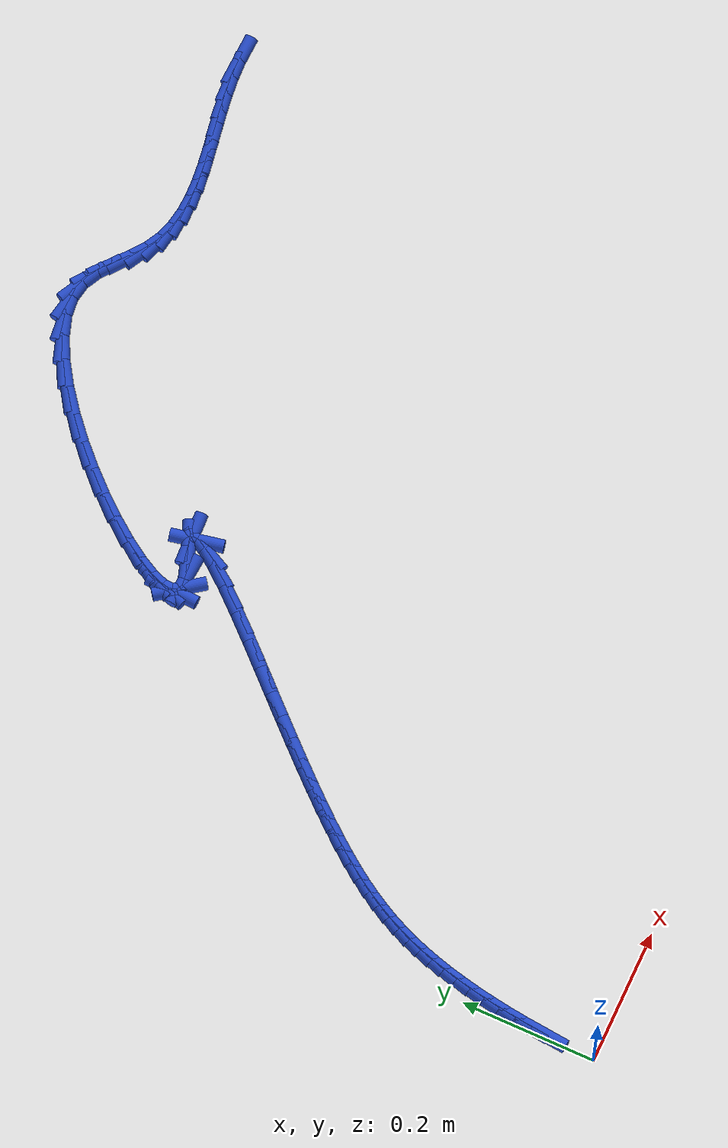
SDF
<sdf version="1.6">
 <world name="default">
  <model name="ground_plane">
   <static>1</static>
   <link name="link">
    <collision name="collision">
     <geometry><plane><normal>0 0 1</normal><size>100 100</size></plane></geometry>
     <surface><friction><ode><mu>100</mu><mu2>50</mu2></ode></friction></surface>
    </collision>
    <visual name="visual">
     <cast_shadows>0</cast_shadows>
     <geometry><plane><normal>0 0 1</normal><size>100 100</size></plane></geometry>
     <material>
      <script><uri>file://media/materials/scripts/gazebo.material</uri><name>Gazebo/WhiteGlow</name></script>
     </material>
    </visual>
   </link>
  </model>
  <model name="line">
   <link name="link_3">
    <pose>0.0037403179978569324 0.08259722112196409 0.01 0 1.57 1.474299678970803</pose>
    <collision name="collision">
     <geometry><cylinder><radius>0.01</radius><length>0.08</length></cylinder></geometry>
    </collision>
    <visual name="visual">
     <material>
      <script><name>Gazebo/Blue</name><uri>file://media/materials/scripts/gazebo.material</uri></script>
     </material>
     <geometry><cylinder><radius>0.01</radius><length>0.08</length></cylinder></geometry>
    </visual>
   </link>
   <link name="link_4">
    <pose>0.006383124787802804 0.10989971120939522 0.01 0 1.57 1.4493886720328548</pose>
    <collision name="collision">
     <geometry><cylinder><radius>0.01</radius><length>0.08</length></cylinder></geometry>
    </collision>
    <visual name="visual">
     <material>
      <script><name>Gazebo/Blue</name><uri>file://media/materials/scripts/gazebo.material</uri></script>
     </material>
     <geometry><cylinder><radius>0.01</radius><length>0.08</length></cylinder></geometry>
    </visual>
   </link>
   <link name="link_5">
    <pose>0.009664292436747157 0.1367928302587027 0.01 0 1.57 1.4242243769494918</pose>
    <collision name="collision">
     <geometry><cylinder><radius>0.01</radius><length>0.08</length></cylinder></geometry>
    </collision>
    <visual name="visual">
     <material>
      <script><name>Gazebo/Blue</name><uri>file://media/materials/scripts/gazebo.material</uri></script>
     </material>
     <geometry><cylinder><radius>0.01</radius><length>0.08</length></cylinder></geometry>
    </visual>
   </link>
   <link name="link_6">
    <pose>0.013548027222891015 0.1630999307329795 0.01 0 1.57 1.3983016234893044</pose>
    <collision name="collision">
     <geometry><cylinder><radius>0.01</radius><length>0.08</length></cylinder></geometry>
    </collision>
    <visual name="visual">
     <material>
      <script><name>Gazebo/Blue</name><uri>file://media/materials/scripts/gazebo.material</uri></script>
     </material>
     <geometry><cylinder><radius>0.01</radius><length>0.08</length></cylinder></geometry>
    </visual>
   </link>
   <link name="link_7">
    <pose>0.0179985354244354 0.18864436509531837 0.01 0 1.57 1.3710390368510565</pose>
    <collision name="collision">
     <geometry><cylinder><radius>0.01</radius><length>0.08</length></cylinder></geometry>
    </collision>
    <visual name="visual">
     <material>
      <script><name>Gazebo/Blue</name><uri>file://media/materials/scripts/gazebo.material</uri></script>
     </material>
     <geometry><cylinder><radius>0.01</radius><length>0.08</length></cylinder></geometry>
    </visual>
   </link>
   <link name="link_8">
    <pose>0.02298002331958133 0.21324948580881228 0.01 0 1.57 1.3417259887913635</pose>
    <collision name="collision">
     <geometry><cylinder><radius>0.01</radius><length>0.08</length></cylinder></geometry>
    </collision>
    <visual name="visual">
     <material>
      <script><name>Gazebo/Blue</name><uri>file://media/materials/scripts/gazebo.material</uri></script>
     </material>
     <geometry><cylinder><radius>0.01</radius><length>0.08</length></cylinder></geometry>
    </visual>
   </link>
   <link name="link_9">
    <pose>0.02845708609574596 0.2367397652805597 0.01 0 1.57 1.3090793507262155</pose>
    <collision name="collision">
     <geometry><cylinder><radius>0.01</radius><length>0.08</length></cylinder></geometry>
    </collision>
    <visual name="visual">
     <material>
      <script><name>Gazebo/Blue</name><uri>file://media/materials/scripts/gazebo.material</uri></script>
     </material>
     <geometry><cylinder><radius>0.01</radius><length>0.08</length></cylinder></geometry>
    </visual>
   </link>
   <link name="link_10">
    <pose>0.03443479503717305 0.2590562351559975 0.01 0 1.57 1.2720951628805037</pose>
    <collision name="collision">
     <geometry><cylinder><radius>0.01</radius><length>0.08</length></cylinder></geometry>
    </collision>
    <visual name="visual">
     <material>
      <script><name>Gazebo/Blue</name><uri>file://media/materials/scripts/gazebo.material</uri></script>
     </material>
     <geometry><cylinder><radius>0.01</radius><length>0.08</length></cylinder></geometry>
    </visual>
   </link>
   <link name="link_11">
    <pose>0.040993519385866366 0.2803567630230828 0.01 0 1.57 1.2312868697705155</pose>
    <collision name="collision">
     <geometry><cylinder><radius>0.01</radius><length>0.08</length></cylinder></geometry>
    </collision>
    <visual name="visual">
     <material>
      <script><name>Gazebo/Blue</name><uri>file://media/materials/scripts/gazebo.material</uri></script>
     </material>
     <geometry><cylinder><radius>0.01</radius><length>0.08</length></cylinder></geometry>
    </visual>
   </link>
   <link name="link_12">
    <pose>0.048221834571035085 0.300822847872139 0.01 0 1.57 1.1876288888675635</pose>
    <collision name="collision">
     <geometry><cylinder><radius>0.01</radius><length>0.08</length></cylinder></geometry>
    </collision>
    <visual name="visual">
     <material>
      <script><name>Gazebo/Blue</name><uri>file://media/materials/scripts/gazebo.material</uri></script>
     </material>
     <geometry><cylinder><radius>0.01</radius><length>0.08</length></cylinder></geometry>
    </visual>
   </link>
   <link name="link_13">
    <pose>0.05620831602188841 0.3206359886934892 0.01 0 1.57 1.1423901993905823</pose>
    <collision name="collision">
     <geometry><cylinder><radius>0.01</radius><length>0.08</length></cylinder></geometry>
    </collision>
    <visual name="visual">
     <material>
      <script><name>Gazebo/Blue</name><uri>file://media/materials/scripts/gazebo.material</uri></script>
     </material>
     <geometry><cylinder><radius>0.01</radius><length>0.08</length></cylinder></geometry>
    </visual>
   </link>
   <link name="link_14">
    <pose>0.06504153916763551 0.3399776844774568 0.01 0 1.57 1.0970109802157728</pose>
    <collision name="collision">
     <geometry><cylinder><radius>0.01</radius><length>0.08</length></cylinder></geometry>
    </collision>
    <visual name="visual">
     <material>
      <script><name>Gazebo/Blue</name><uri>file://media/materials/scripts/gazebo.material</uri></script>
     </material>
     <geometry><cylinder><radius>0.01</radius><length>0.08</length></cylinder></geometry>
    </visual>
   </link>
   <link name="link_15">
    <pose>0.07481007943748563 0.3590294342143652 0.01 0 1.57 1.0529369916706768</pose>
    <collision name="collision">
     <geometry><cylinder><radius>0.01</radius><length>0.08</length></cylinder></geometry>
    </collision>
    <visual name="visual">
     <material>
      <script><name>Gazebo/Blue</name><uri>file://media/materials/scripts/gazebo.material</uri></script>
     </material>
     <geometry><cylinder><radius>0.01</radius><length>0.08</length></cylinder></geometry>
    </visual>
   </link>
   <link name="link_16">
    <pose>0.08560251226064788 0.3779727368945376 0.01 0 1.57 1.0114531920563796</pose>
    <collision name="collision">
     <geometry><cylinder><radius>0.01</radius><length>0.08</length></cylinder></geometry>
    </collision>
    <visual name="visual">
     <material>
      <script><name>Gazebo/Blue</name><uri>file://media/materials/scripts/gazebo.material</uri></script>
     </material>
     <geometry><cylinder><radius>0.01</radius><length>0.08</length></cylinder></geometry>
    </visual>
   </link>
   <link name="link_17">
    <pose>0.09750741306633157 0.3969890915082975 0.01 0 1.57 0.9735583389995821</pose>
    <collision name="collision">
     <geometry><cylinder><radius>0.01</radius><length>0.08</length></cylinder></geometry>
    </collision>
    <visual name="visual">
     <material>
      <script><name>Gazebo/Blue</name><uri>file://media/materials/scripts/gazebo.material</uri></script>
     </material>
     <geometry><cylinder><radius>0.01</radius><length>0.08</length></cylinder></geometry>
    </visual>
   </link>
   <link name="link_18">
    <pose>0.11061335728374573 0.41625999704596794 0.01 0 1.57 0.9399046409608309</pose>
    <collision name="collision">
     <geometry><cylinder><radius>0.01</radius><length>0.08</length></cylinder></geometry>
    </collision>
    <visual name="visual">
     <material>
      <script><name>Gazebo/Blue</name><uri>file://media/materials/scripts/gazebo.material</uri></script>
     </material>
     <geometry><cylinder><radius>0.01</radius><length>0.08</length></cylinder></geometry>
    </visual>
   </link>
   <link name="link_19">
    <pose>0.12500892034209976 0.4359669524978726 0.01 0 1.57 0.9108021718536177</pose>
    <collision name="collision">
     <geometry><cylinder><radius>0.01</radius><length>0.08</length></cylinder></geometry>
    </collision>
    <visual name="visual">
     <material>
      <script><name>Gazebo/Blue</name><uri>file://media/materials/scripts/gazebo.material</uri></script>
     </material>
     <geometry><cylinder><radius>0.01</radius><length>0.08</length></cylinder></geometry>
    </visual>
   </link>
   <link name="link_20">
    <pose>0.14078267767060265 0.4562914568543345 0.01 0 1.57 0.8862697683500474</pose>
    <collision name="collision">
     <geometry><cylinder><radius>0.01</radius><length>0.08</length></cylinder></geometry>
    </collision>
    <visual name="visual">
     <material>
      <script><name>Gazebo/Blue</name><uri>file://media/materials/scripts/gazebo.material</uri></script>
     </material>
     <geometry><cylinder><radius>0.01</radius><length>0.08</length></cylinder></geometry>
    </visual>
   </link>
   <link name="link_21">
    <pose>0.15802320469846376 0.47741500910567725 0.01 0 1.57 0.8661082558374449</pose>
    <collision name="collision">
     <geometry><cylinder><radius>0.01</radius><length>0.08</length></cylinder></geometry>
    </collision>
    <visual name="visual">
     <material>
      <script><name>Gazebo/Blue</name><uri>file://media/materials/scripts/gazebo.material</uri></script>
     </material>
     <geometry><cylinder><radius>0.01</radius><length>0.08</length></cylinder></geometry>
    </visual>
   </link>
   <link name="link_22">
    <pose>0.17681907685489212 0.49951910824222373 0.01 0 1.57 0.8499757122957151</pose>
    <collision name="collision">
     <geometry><cylinder><radius>0.01</radius><length>0.08</length></cylinder></geometry>
    </collision>
    <visual name="visual">
     <material>
      <script><name>Gazebo/Blue</name><uri>file://media/materials/scripts/gazebo.material</uri></script>
     </material>
     <geometry><cylinder><radius>0.01</radius><length>0.08</length></cylinder></geometry>
    </visual>
   </link>
   <link name="link_23">
    <pose>0.19725886956909705 0.5227852532542978 0.01 0 1.57 0.837452380820657</pose>
    <collision name="collision">
     <geometry><cylinder><radius>0.01</radius><length>0.08</length></cylinder></geometry>
    </collision>
    <visual name="visual">
     <material>
      <script><name>Gazebo/Blue</name><uri>file://media/materials/scripts/gazebo.material</uri></script>
     </material>
     <geometry><cylinder><radius>0.01</radius><length>0.08</length></cylinder></geometry>
    </visual>
   </link>
   <link name="link_24">
    <pose>0.21943115827028775 0.5473949431322225 0.01 0 1.57 0.8280902414055195</pose>
    <collision name="collision">
     <geometry><cylinder><radius>0.01</radius><length>0.08</length></cylinder></geometry>
    </collision>
    <visual name="visual">
     <material>
      <script><name>Gazebo/Blue</name><uri>file://media/materials/scripts/gazebo.material</uri></script>
     </material>
     <geometry><cylinder><radius>0.01</radius><length>0.08</length></cylinder></geometry>
    </visual>
   </link>
   <link name="link_25">
    <pose>0.24342451838767332 0.5735296768663212 0.01 0 1.57 0.8214472053036344</pose>
    <collision name="collision">
     <geometry><cylinder><radius>0.01</radius><length>0.08</length></cylinder></geometry>
    </collision>
    <visual name="visual">
     <material>
      <script><name>Gazebo/Blue</name><uri>file://media/materials/scripts/gazebo.material</uri></script>
     </material>
     <geometry><cylinder><radius>0.01</radius><length>0.08</length></cylinder></geometry>
    </visual>
   </link>
   <link name="link_26">
    <pose>0.269327525350463 0.6013709534469172 0.01 0 1.57 0.8171083670340303</pose>
    <collision name="collision">
     <geometry><cylinder><radius>0.01</radius><length>0.08</length></cylinder></geometry>
    </collision>
    <visual name="visual">
     <material>
      <script><name>Gazebo/Blue</name><uri>file://media/materials/scripts/gazebo.material</uri></script>
     </material>
     <geometry><cylinder><radius>0.01</radius><length>0.08</length></cylinder></geometry>
    </visual>
   </link>
   <link name="link_27">
    <pose>0.297228754587866 0.6311002718643337 0.01 0 1.57 0.8151990248766365</pose>
    <collision name="collision">
     <geometry><cylinder><radius>0.01</radius><length>0.08</length></cylinder></geometry>
    </collision>
    <visual name="visual">
     <material>
      <script><name>Gazebo/Blue</name><uri>file://media/materials/scripts/gazebo.material</uri></script>
     </material>
     <geometry><cylinder><radius>0.01</radius><length>0.08</length></cylinder></geometry>
    </visual>
   </link>
   <link name="link_28">
    <pose>0.32703689831106086 0.6627401622242945 0.01 0 1.57 0.8184666140518158</pose>
    <collision name="collision">
     <geometry><cylinder><radius>0.01</radius><length>0.08</length></cylinder></geometry>
    </collision>
    <visual name="visual">
     <material>
      <script><name>Gazebo/Blue</name><uri>file://media/materials/scripts/gazebo.material</uri></script>
     </material>
     <geometry><cylinder><radius>0.01</radius><length>0.08</length></cylinder></geometry>
    </visual>
   </link>
   <link name="link_29">
    <pose>0.35749871417827467 0.6952863137638601 0.01 0 1.57 0.828332748021659</pose>
    <collision name="collision">
     <geometry><cylinder><radius>0.01</radius><length>0.08</length></cylinder></geometry>
    </collision>
    <visual name="visual">
     <material>
      <script><name>Gazebo/Blue</name><uri>file://media/materials/scripts/gazebo.material</uri></script>
     </material>
     <geometry><cylinder><radius>0.01</radius><length>0.08</length></cylinder></geometry>
    </visual>
   </link>
   <link name="link_30">
    <pose>0.38689919114865956 0.7273263351006837 0.01 0 1.57 0.8469575586449529</pose>
    <collision name="collision">
     <geometry><cylinder><radius>0.01</radius><length>0.08</length></cylinder></geometry>
    </collision>
    <visual name="visual">
     <material>
      <script><name>Gazebo/Blue</name><uri>file://media/materials/scripts/gazebo.material</uri></script>
     </material>
     <geometry><cylinder><radius>0.01</radius><length>0.08</length></cylinder></geometry>
    </visual>
   </link>
   <link name="link_31">
    <pose>0.41352214316438013 0.757446796450159 0.01 0 1.57 0.8803396599835526</pose>
    <collision name="collision">
     <geometry><cylinder><radius>0.01</radius><length>0.08</length></cylinder></geometry>
    </collision>
    <visual name="visual">
     <material>
      <script><name>Gazebo/Blue</name><uri>file://media/materials/scripts/gazebo.material</uri></script>
     </material>
     <geometry><cylinder><radius>0.01</radius><length>0.08</length></cylinder></geometry>
    </visual>
   </link>
   <link name="link_32">
    <pose>0.43565138416760013 0.7842342680276797 0.01 0 1.57 0.9452872435706465</pose>
    <collision name="collision">
     <geometry><cylinder><radius>0.01</radius><length>0.08</length></cylinder></geometry>
    </collision>
    <visual name="visual">
     <material>
      <script><name>Gazebo/Blue</name><uri>file://media/materials/scripts/gazebo.material</uri></script>
     </material>
     <geometry><cylinder><radius>0.01</radius><length>0.08</length></cylinder></geometry>
    </visual>
   </link>
   <link name="link_33">
    <pose>0.45157072810048443 0.8062753200486404 0.01 0 1.57 1.1044995687943102</pose>
    <collision name="collision">
     <geometry><cylinder><radius>0.01</radius><length>0.08</length></cylinder></geometry>
    </collision>
    <visual name="visual">
     <material>
      <script><name>Gazebo/Blue</name><uri>file://media/materials/scripts/gazebo.material</uri></script>
     </material>
     <geometry><cylinder><radius>0.01</radius><length>0.08</length></cylinder></geometry>
    </visual>
   </link>
   <link name="link_34">
    <pose>0.4595639889051968 0.8221565227284345 0.01 0 1.57 -1.3748567429442067</pose>
    <collision name="collision">
     <geometry><cylinder><radius>0.01</radius><length>0.08</length></cylinder></geometry>
    </collision>
    <visual name="visual">
     <material>
      <script><name>Gazebo/Blue</name><uri>file://media/materials/scripts/gazebo.material</uri></script>
     </material>
     <geometry><cylinder><radius>0.01</radius><length>0.08</length></cylinder></geometry>
    </visual>
   </link>
   <link name="link_35">
    <pose>0.45791498052390206 0.8304644462824562 0.01 0 1.57 0.05213700567528619</pose>
    <collision name="collision">
     <geometry><cylinder><radius>0.01</radius><length>0.08</length></cylinder></geometry>
    </collision>
    <visual name="visual">
     <material>
      <script><name>Gazebo/Blue</name><uri>file://media/materials/scripts/gazebo.material</uri></script>
     </material>
     <geometry><cylinder><radius>0.01</radius><length>0.08</length></cylinder></geometry>
    </visual>
   </link>
   <link name="link_36">
    <pose>0.44490751689876434 0.8297856609260998 0.01 0 1.57 0.36840967335424907</pose>
    <collision name="collision">
     <geometry><cylinder><radius>0.01</radius><length>0.08</length></cylinder></geometry>
    </collision>
    <visual name="visual">
     <material>
      <script><name>Gazebo/Blue</name><uri>file://media/materials/scripts/gazebo.material</uri></script>
     </material>
     <geometry><cylinder><radius>0.01</radius><length>0.08</length></cylinder></geometry>
    </visual>
   </link>
   <link name="link_37">
    <pose>0.4208996785376612 0.8205178018622584 0.01 0 1.57 0.3027284951760322</pose>
    <collision name="collision">
     <geometry><cylinder><radius>0.01</radius><length>0.08</length></cylinder></geometry>
    </collision>
    <visual name="visual">
     <material>
      <script><name>Gazebo/Blue</name><uri>file://media/materials/scripts/gazebo.material</uri></script>
     </material>
     <geometry><cylinder><radius>0.01</radius><length>0.08</length></cylinder></geometry>
    </visual>
   </link>
   <link name="link_38">
    <pose>0.39811414121544625 0.8134012322591945 0.01 0 1.57 -0.08041300221350424</pose>
    <collision name="collision">
     <geometry><cylinder><radius>0.01</radius><length>0.08</length></cylinder></geometry>
    </collision>
    <visual name="visual">
     <material>
      <script><name>Gazebo/Blue</name><uri>file://media/materials/scripts/gazebo.material</uri></script>
     </material>
     <geometry><cylinder><radius>0.01</radius><length>0.08</length></cylinder></geometry>
    </visual>
   </link>
   <link name="link_39">
    <pose>0.3837821628271969 0.8145562001803319 0.01 0 1.57 -0.9313959087975537</pose>
    <collision name="collision">
     <geometry><cylinder><radius>0.01</radius><length>0.08</length></cylinder></geometry>
    </collision>
    <visual name="visual">
     <material>
      <script><name>Gazebo/Blue</name><uri>file://media/materials/scripts/gazebo.material</uri></script>
     </material>
     <geometry><cylinder><radius>0.01</radius><length>0.08</length></cylinder></geometry>
    </visual>
   </link>
   <link name="link_40">
    <pose>0.3774000783011681 0.8231387433879545 0.01 0 1.57 1.5144169045270115</pose>
    <collision name="collision">
     <geometry><cylinder><radius>0.01</radius><length>0.08</length></cylinder></geometry>
    </collision>
    <visual name="visual">
     <material>
      <script><name>Gazebo/Blue</name><uri>file://media/materials/scripts/gazebo.material</uri></script>
     </material>
     <geometry><cylinder><radius>0.01</radius><length>0.08</length></cylinder></geometry>
    </visual>
   </link>
   <link name="link_41">
    <pose>0.378244899882325 0.838107436393058 0.01 0 1.57 1.2236766655507594</pose>
    <collision name="collision">
     <geometry><cylinder><radius>0.01</radius><length>0.08</length></cylinder></geometry>
    </collision>
    <visual name="visual">
     <material>
      <script><name>Gazebo/Blue</name><uri>file://media/materials/scripts/gazebo.material</uri></script>
     </material>
     <geometry><cylinder><radius>0.01</radius><length>0.08</length></cylinder></geometry>
    </visual>
   </link>
   <link name="link_42">
    <pose>0.3855936398156329 0.8584208537066389 0.01 0 1.57 1.0808151144437264</pose>
    <collision name="collision">
     <geometry><cylinder><radius>0.01</radius><length>0.08</length></cylinder></geometry>
    </collision>
    <visual name="visual">
     <material>
      <script><name>Gazebo/Blue</name><uri>file://media/materials/scripts/gazebo.material</uri></script>
     </material>
     <geometry><cylinder><radius>0.01</radius><length>0.08</length></cylinder></geometry>
    </visual>
   </link>
   <link name="link_43">
    <pose>0.398723310346057 0.8830375698396937 0.01 0 1.57 0.9927453062769094</pose>
    <collision name="collision">
     <geometry><cylinder><radius>0.01</radius><length>0.08</length></cylinder></geometry>
    </collision>
    <visual name="visual">
     <material>
      <script><name>Gazebo/Blue</name><uri>file://media/materials/scripts/gazebo.material</uri></script>
     </material>
     <geometry><cylinder><radius>0.01</radius><length>0.08</length></cylinder></geometry>
    </visual>
   </link>
   <link name="link_44">
    <pose>0.41691092371856275 0.9109161593032189 0.01 0 1.57 0.9283956316620934</pose>
    <collision name="collision">
     <geometry><cylinder><radius>0.01</radius><length>0.08</length></cylinder></geometry>
    </collision>
    <visual name="visual">
     <material>
      <script><name>Gazebo/Blue</name><uri>file://media/materials/scripts/gazebo.material</uri></script>
     </material>
     <geometry><cylinder><radius>0.01</radius><length>0.08</length></cylinder></geometry>
    </visual>
   </link>
   <link name="link_45">
    <pose>0.43943349217811545 0.9410151966082106 0.01 0 1.57 0.8747483978188774</pose>
    <collision name="collision">
     <geometry><cylinder><radius>0.01</radius><length>0.08</length></cylinder></geometry>
    </collision>
    <visual name="visual">
     <material>
      <script><name>Gazebo/Blue</name><uri>file://media/materials/scripts/gazebo.material</uri></script>
     </material>
     <geometry><cylinder><radius>0.01</radius><length>0.08</length></cylinder></geometry>
    </visual>
   </link>
   <link name="link_46">
    <pose>0.46556802796967983 0.9722932562656652 0.01 0 1.57 0.8249568326542357</pose>
    <collision name="collision">
     <geometry><cylinder><radius>0.01</radius><length>0.08</length></cylinder></geometry>
    </collision>
    <visual name="visual">
     <material>
      <script><name>Gazebo/Blue</name><uri>file://media/materials/scripts/gazebo.material</uri></script>
     </material>
     <geometry><cylinder><radius>0.01</radius><length>0.08</length></cylinder></geometry>
    </visual>
   </link>
   <link name="link_47">
    <pose>0.4945915433382219 1.0037089127865793 0.01 0 1.57 0.7744153856924035</pose>
    <collision name="collision">
     <geometry><cylinder><radius>0.01</radius><length>0.08</length></cylinder></geometry>
    </collision>
    <visual name="visual">
     <material>
      <script><name>Gazebo/Blue</name><uri>file://media/materials/scripts/gazebo.material</uri></script>
     </material>
     <geometry><cylinder><radius>0.01</radius><length>0.08</length></cylinder></geometry>
    </visual>
   </link>
   <link name="link_48">
    <pose>0.5257810505287068 1.0342207406819495 0.01 0 1.57 0.7190577772713621</pose>
    <collision name="collision">
     <geometry><cylinder><radius>0.01</radius><length>0.08</length></cylinder></geometry>
    </collision>
    <visual name="visual">
     <material>
      <script><name>Gazebo/Blue</name><uri>file://media/materials/scripts/gazebo.material</uri></script>
     </material>
     <geometry><cylinder><radius>0.01</radius><length>0.08</length></cylinder></geometry>
    </visual>
   </link>
   <link name="link_49">
    <pose>0.5584135617860995 1.0627873144627715 0.01 0 1.57 0.6542644153882542</pose>
    <collision name="collision">
     <geometry><cylinder><radius>0.01</radius><length>0.08</length></cylinder></geometry>
    </collision>
    <visual name="visual">
     <material>
      <script><name>Gazebo/Blue</name><uri>file://media/materials/scripts/gazebo.material</uri></script>
     </material>
     <geometry><cylinder><radius>0.01</radius><length>0.08</length></cylinder></geometry>
    </visual>
   </link>
   <link name="link_50">
    <pose>0.5917660893553653 1.0883672086400424 0.01 0 1.57 0.57372685022199</pose>
    <collision name="collision">
     <geometry><cylinder><radius>0.01</radius><length>0.08</length></cylinder></geometry>
    </collision>
    <visual name="visual">
     <material>
      <script><name>Gazebo/Blue</name><uri>file://media/materials/scripts/gazebo.material</uri></script>
     </material>
     <geometry><cylinder><radius>0.01</radius><length>0.08</length></cylinder></geometry>
    </visual>
   </link>
   <link name="link_51">
    <pose>0.6251156454814695 1.109918997724758 0.01 0 1.57 0.4678189094470453</pose>
    <collision name="collision">
     <geometry><cylinder><radius>0.01</radius><length>0.08</length></cylinder></geometry>
    </collision>
    <visual name="visual">
     <material>
      <script><name>Gazebo/Blue</name><uri>file://media/materials/scripts/gazebo.material</uri></script>
     </material>
     <geometry><cylinder><radius>0.01</radius><length>0.08</length></cylinder></geometry>
    </visual>
   </link>
   <link name="link_52">
    <pose>0.6577392424093775 1.126401256227915 0.01 0 1.57 0.3211659014063102</pose>
    <collision name="collision">
     <geometry><cylinder><radius>0.01</radius><length>0.08</length></cylinder></geometry>
    </collision>
    <visual name="visual">
     <material>
      <script><name>Gazebo/Blue</name><uri>file://media/materials/scripts/gazebo.material</uri></script>
     </material>
     <geometry><cylinder><radius>0.01</radius><length>0.08</length></cylinder></geometry>
    </visual>
   </link>
   <link name="link_53">
    <pose>0.6889138923840548 1.13677255866051 0.01 0 1.57 0.11053450320210302</pose>
    <collision name="collision">
     <geometry><cylinder><radius>0.01</radius><length>0.08</length></cylinder></geometry>
    </collision>
    <visual name="visual">
     <material>
      <script><name>Gazebo/Blue</name><uri>file://media/materials/scripts/gazebo.material</uri></script>
     </material>
     <geometry><cylinder><radius>0.01</radius><length>0.08</length></cylinder></geometry>
    </visual>
   </link>
   <link name="link_54">
    <pose>0.7179166076504662 1.139991479533539 0.01 0 1.57 -0.18571488944040304</pose>
    <collision name="collision">
     <geometry><cylinder><radius>0.01</radius><length>0.08</length></cylinder></geometry>
    </collision>
    <visual name="visual">
     <material>
      <script><name>Gazebo/Blue</name><uri>file://media/materials/scripts/gazebo.material</uri></script>
     </material>
     <geometry><cylinder><radius>0.01</radius><length>0.08</length></cylinder></geometry>
    </visual>
   </link>
   <link name="link_55">
    <pose>0.7440522048131548 1.1350811270457015 0.01 0 1.57 -0.48040268974108447</pose>
    <collision name="collision">
     <geometry><cylinder><radius>0.01</radius><length>0.08</length></cylinder></geometry>
    </collision>
    <visual name="visual">
     <material>
      <script><name>Gazebo/Blue</name><uri>file://media/materials/scripts/gazebo.material</uri></script>
     </material>
     <geometry><cylinder><radius>0.01</radius><length>0.08</length></cylinder></geometry>
    </visual>
   </link>
   <link name="link_56">
    <pose>0.7674182408719596 1.1229045532705673 0.01 0 1.57 -0.6532284142592251</pose>
    <collision name="collision">
     <geometry><cylinder><radius>0.01</radius><length>0.08</length></cylinder></geometry>
    </collision>
    <visual name="visual">
     <material>
      <script><name>Gazebo/Blue</name><uri>file://media/materials/scripts/gazebo.material</uri></script>
     </material>
     <geometry><cylinder><radius>0.01</radius><length>0.08</length></cylinder></geometry>
    </visual>
   </link>
   <link name="link_57">
    <pose>0.7890008345854099 1.1063871547453505 0.01 0 1.57 -0.7077223486076931</pose>
    <collision name="collision">
     <geometry><cylinder><radius>0.01</radius><length>0.08</length></cylinder></geometry>
    </collision>
    <visual name="visual">
     <material>
      <script><name>Gazebo/Blue</name><uri>file://media/materials/scripts/gazebo.material</uri></script>
     </material>
     <geometry><cylinder><radius>0.01</radius><length>0.08</length></cylinder></geometry>
    </visual>
   </link>
   <link name="link_58">
    <pose>0.8098331516015134 1.0885635234470856 0.01 0 1.57 -0.651301326150636</pose>
    <collision name="collision">
     <geometry><cylinder><radius>0.01</radius><length>0.08</length></cylinder></geometry>
    </collision>
    <visual name="visual">
     <material>
      <script><name>Gazebo/Blue</name><uri>file://media/materials/scripts/gazebo.material</uri></script>
     </material>
     <geometry><cylinder><radius>0.01</radius><length>0.08</length></cylinder></geometry>
    </visual>
   </link>
   <link name="link_59">
    <pose>0.8309483573628698 1.0724682507121002 0.01 0 1.57 -0.49337258095488196</pose>
    <collision name="collision">
     <geometry><cylinder><radius>0.01</radius><length>0.08</length></cylinder></geometry>
    </collision>
    <visual name="visual">
     <material>
      <script><name>Gazebo/Blue</name><uri>file://media/materials/scripts/gazebo.material</uri></script>
     </material>
     <geometry><cylinder><radius>0.01</radius><length>0.08</length></cylinder></geometry>
    </visual>
   </link>
   <link name="link_60">
    <pose>0.8531801064048204 1.060513615424768 0.01 0 1.57 -0.32226206378518746</pose>
    <collision name="collision">
     <geometry><cylinder><radius>0.01</radius><length>0.08</length></cylinder></geometry>
    </collision>
    <visual name="visual">
     <material>
      <script><name>Gazebo/Blue</name><uri>file://media/materials/scripts/gazebo.material</uri></script>
     </material>
     <geometry><cylinder><radius>0.01</radius><length>0.08</length></cylinder></geometry>
    </visual>
   </link>
   <link name="link_61">
    <pose>0.8765880582233905 1.0526976587852286 0.01 0 1.57 -0.17264172392268098</pose>
    <collision name="collision">
     <geometry><cylinder><radius>0.01</radius><length>0.08</length></cylinder></geometry>
    </collision>
    <visual name="visual">
     <material>
      <script><name>Gazebo/Blue</name><uri>file://media/materials/scripts/gazebo.material</uri></script>
     </material>
     <geometry><cylinder><radius>0.01</radius><length>0.08</length></cylinder></geometry>
    </visual>
   </link>
   <link name="link_62">
    <pose>0.9010442055997253 1.0484330538295867 0.01 0 1.57 -0.051206891379099624</pose>
    <collision name="collision">
     <geometry><cylinder><radius>0.01</radius><length>0.08</length></cylinder></geometry>
    </collision>
    <visual name="visual">
     <material>
      <script><name>Gazebo/Blue</name><uri>file://media/materials/scripts/gazebo.material</uri></script>
     </material>
     <geometry><cylinder><radius>0.01</radius><length>0.08</length></cylinder></geometry>
    </visual>
   </link>
   <link name="link_63">
    <pose>0.9264205413149719 1.047132473593947 0.01 0 1.57 0.04109944578978239</pose>
    <collision name="collision">
     <geometry><cylinder><radius>0.01</radius><length>0.08</length></cylinder></geometry>
    </collision>
    <visual name="visual">
     <material>
      <script><name>Gazebo/Blue</name><uri>file://media/materials/scripts/gazebo.material</uri></script>
     </material>
     <geometry><cylinder><radius>0.01</radius><length>0.08</length></cylinder></geometry>
    </visual>
   </link>
   <link name="link_64">
    <pose>0.9525890581502746 1.048208591114413 0.01 0 1.57 0.10638773826787151</pose>
    <collision name="collision">
     <geometry><cylinder><radius>0.01</radius><length>0.08</length></cylinder></geometry>
    </collision>
    <visual name="visual">
     <material>
      <script><name>Gazebo/Blue</name><uri>file://media/materials/scripts/gazebo.material</uri></script>
     </material>
     <geometry><cylinder><radius>0.01</radius><length>0.08</length></cylinder></geometry>
    </visual>
   </link>
   <link name="link_65">
    <pose>0.9794217488867801 1.0510740794270903 0.01 0 1.57 0.1475390606556527</pose>
    <collision name="collision">
     <geometry><cylinder><radius>0.01</radius><length>0.08</length></cylinder></geometry>
    </collision>
    <visual name="visual">
     <material>
      <script><name>Gazebo/Blue</name><uri>file://media/materials/scripts/gazebo.material</uri></script>
     </material>
     <geometry><cylinder><radius>0.01</radius><length>0.08</length></cylinder></geometry>
    </visual>
   </link>
   <link name="link_66">
    <pose>1.0067906063056338 1.0551416115680825 0.01 0 1.57 0.16699569944765041</pose>
    <collision name="collision">
     <geometry><cylinder><radius>0.01</radius><length>0.08</length></cylinder></geometry>
    </collision>
    <visual name="visual">
     <material>
      <script><name>Gazebo/Blue</name><uri>file://media/materials/scripts/gazebo.material</uri></script>
     </material>
     <geometry><cylinder><radius>0.01</radius><length>0.08</length></cylinder></geometry>
    </visual>
   </link>
   <link name="link_67">
    <pose>1.0345676231879817 1.0598238605734944 0.01 0 1.57 0.16630823327488306</pose>
    <collision name="collision">
     <geometry><cylinder><radius>0.01</radius><length>0.08</length></cylinder></geometry>
    </collision>
    <visual name="visual">
     <material>
      <script><name>Gazebo/Blue</name><uri>file://media/materials/scripts/gazebo.material</uri></script>
     </material>
     <geometry><cylinder><radius>0.01</radius><length>0.08</length></cylinder></geometry>
    </visual>
   </link>
   <link name="link_68">
    <pose>1.0626247923149699 1.0645334994794307 0.01 0 1.57 0.14605643918004574</pose>
    <collision name="collision">
     <geometry><cylinder><radius>0.01</radius><length>0.08</length></cylinder></geometry>
    </collision>
    <visual name="visual">
     <material>
      <script><name>Gazebo/Blue</name><uri>file://media/materials/scripts/gazebo.material</uri></script>
     </material>
     <geometry><cylinder><radius>0.01</radius><length>0.08</length></cylinder></geometry>
    </visual>
   </link>
   <link name="link_69">
    <pose>1.0908341064677438 1.0686832013219956 0.01 0 1.57 0.10594510084303424</pose>
    <collision name="collision">
     <geometry><cylinder><radius>0.01</radius><length>0.08</length></cylinder></geometry>
    </collision>
    <visual name="visual">
     <material>
      <script><name>Gazebo/Blue</name><uri>file://media/materials/scripts/gazebo.material</uri></script>
     </material>
     <geometry><cylinder><radius>0.01</radius><length>0.08</length></cylinder></geometry>
    </visual>
   </link>
   <link name="link_70">
    <pose>1.1190675584274488 1.0716856391372933 0.01 0 1.57 0.045041171255095575</pose>
    <collision name="collision">
     <geometry><cylinder><radius>0.01</radius><length>0.08</length></cylinder></geometry>
    </collision>
    <visual name="visual">
     <material>
      <script><name>Gazebo/Blue</name><uri>file://media/materials/scripts/gazebo.material</uri></script>
     </material>
     <geometry><cylinder><radius>0.01</radius><length>0.08</length></cylinder></geometry>
    </visual>
   </link>
   <link name="link_71">
    <pose>1.1471971409752317 1.0729534859614287 0.01 0 1.57 -0.03776546968417546</pose>
    <collision name="collision">
     <geometry><cylinder><radius>0.01</radius><length>0.08</length></cylinder></geometry>
    </collision>
    <visual name="visual">
     <material>
      <script><name>Gazebo/Blue</name><uri>file://media/materials/scripts/gazebo.material</uri></script>
     </material>
     <geometry><cylinder><radius>0.01</radius><length>0.08</length></cylinder></geometry>
    </visual>
   </link>
  </model>
 </world>
</sdf>
